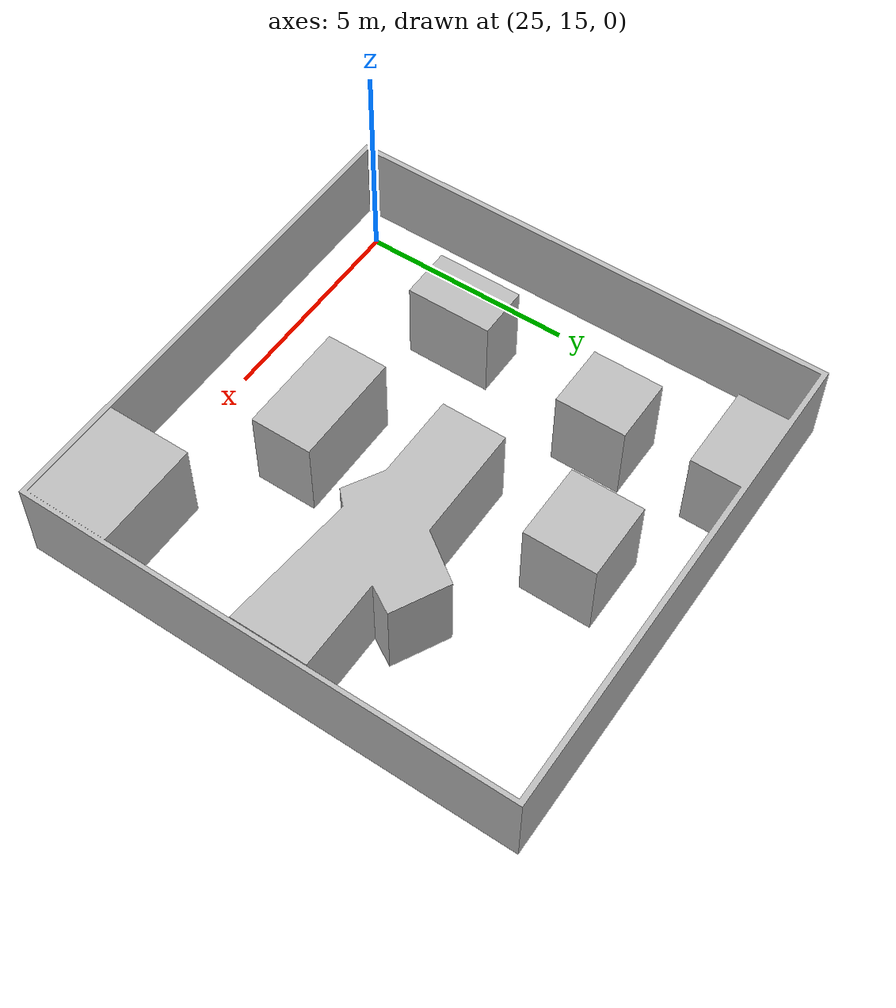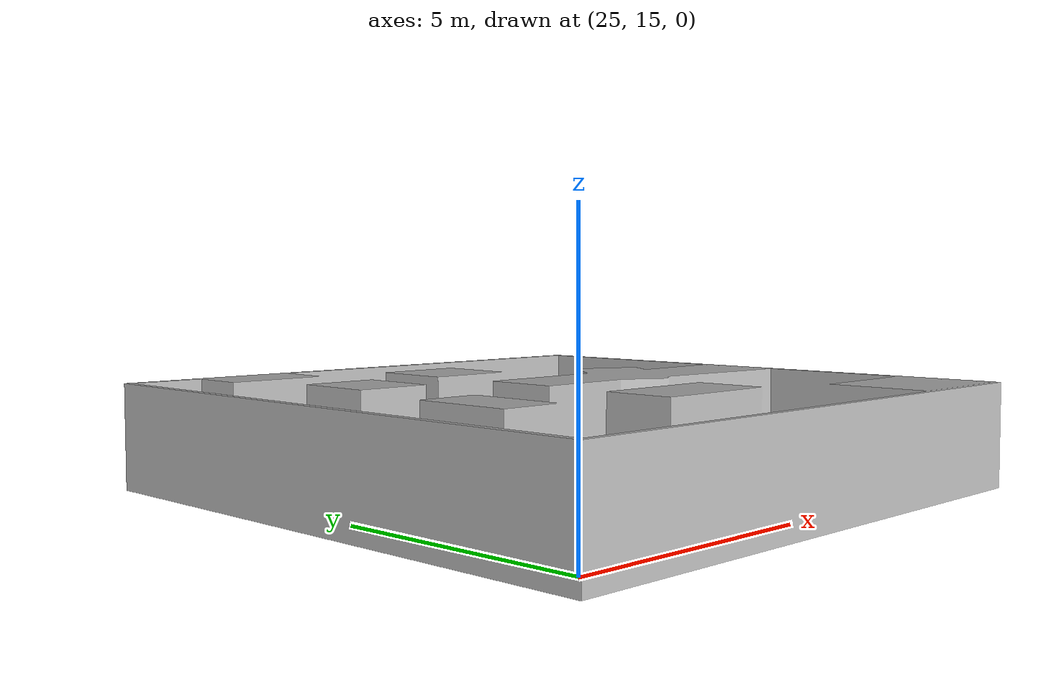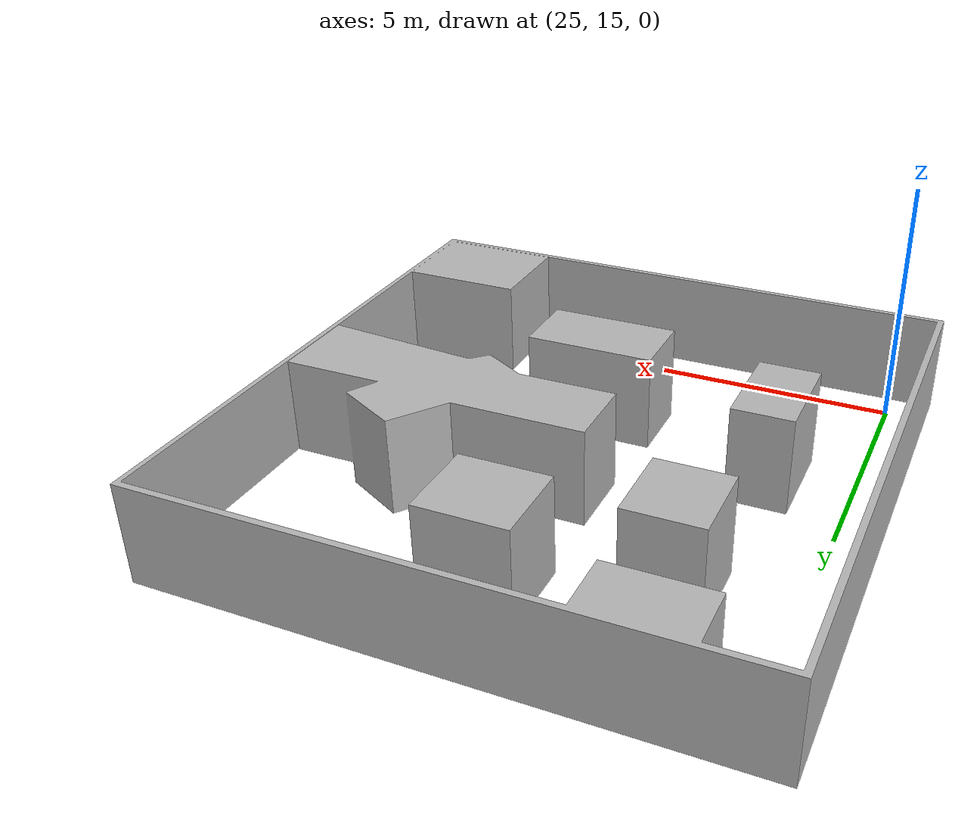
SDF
<?xml version='1.0'?>
<sdf version='1.4'>

  <model name='simple_world'>
    <pose>30 20 0 0 0 0</pose>
    <static>true</static>
    <link name="wall">
      <visual name="wall_visual">
        <geometry>
          <mesh><uri>model://simple_world/meshes/walls.dae</uri></mesh>
        </geometry>
      </visual>
      <collision name="wall_collision">
        <geometry>
          <mesh><uri>model://simple_world/meshes/walls.dae</uri></mesh>
        </geometry>
      </collision>
    </link>
  </model>
</sdf>
